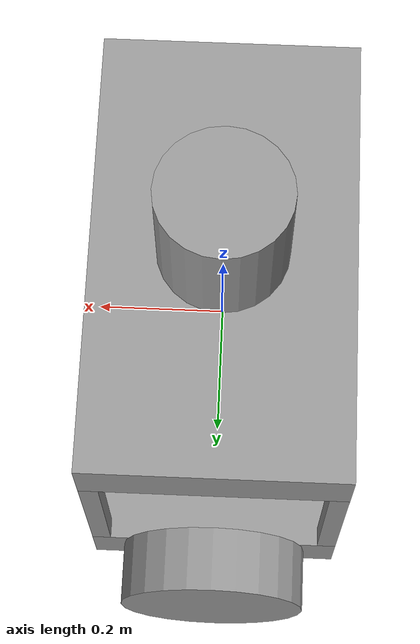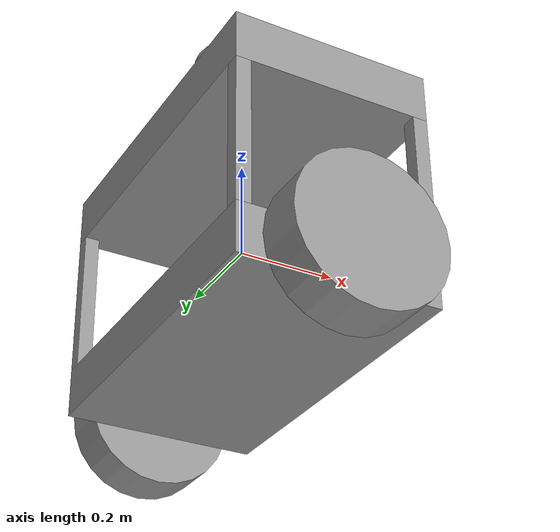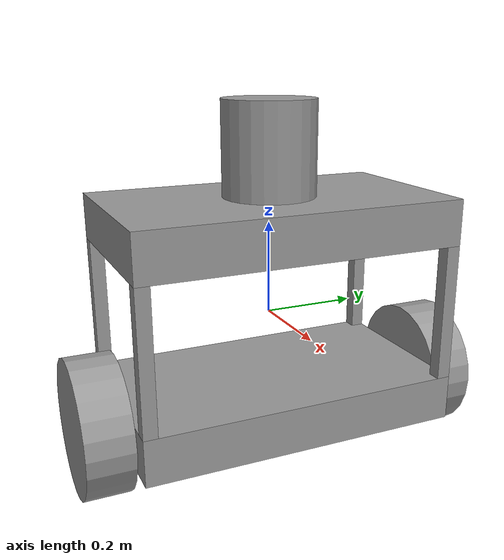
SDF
<?xml version='1.0'?>
<sdf version='1.6'>
  <model name='BurgerRobot'>
    <link name='link_0'>
      <pose frame=''>0 0 -0.194444 0 -0 0</pose>
      <inertial>
        <mass>1</mass>
        <inertia>
          <ixx>0.166667</ixx>
          <ixy>0</ixy>
          <ixz>0</ixz>
          <iyy>0.166667</iyy>
          <iyz>0</iyz>
          <izz>0.166667</izz>
        </inertia>
        <pose frame=''>0 0 0 0 -0 0</pose>
      </inertial>
      <gravity>1</gravity>
      <self_collide>0</self_collide>
      <kinematic>0</kinematic>
      <visual name='visual'>
        <pose frame=''>0 0 0 0 -0 0</pose>
        <geometry>
          <box>
            <size>0.4 0.7 0.1</size>
          </box>
        </geometry>
        <material>
          <lighting>1</lighting>
          <script>
            <uri>file://media/materials/scripts/gazebo.material</uri>
            <name>Gazebo/Grey</name>
          </script>
          <shader type='pixel'>
            <normal_map>__default__</normal_map>
          </shader>
          <ambient>0.3 0.3 0.3 1</ambient>
          <diffuse>0.7 0.7 0.7 1</diffuse>
          <specular>0.01 0.01 0.01 1</specular>
          <emissive>0 0 0 1</emissive>
        </material>
        <transparency>0</transparency>
        <cast_shadows>1</cast_shadows>
      </visual>
      <collision name='collision'>
        <laser_retro>0</laser_retro>
        <max_contacts>10</max_contacts>
        <pose frame=''>0 0 0 0 -0 0</pose>
        <geometry>
          <box>
            <size>0.4 0.7 0.1</size>
          </box>
        </geometry>
        <surface>
          <friction>
            <ode>
              <mu>1</mu>
              <mu2>1</mu2>
              <fdir1>0 0 0</fdir1>
              <slip1>0</slip1>
              <slip2>0</slip2>
            </ode>
            <torsional>
              <coefficient>1</coefficient>
              <patch_radius>0</patch_radius>
              <surface_radius>0</surface_radius>
              <use_patch_radius>1</use_patch_radius>
              <ode>
                <slip>0</slip>
              </ode>
            </torsional>
          </friction>
          <bounce>
            <restitution_coefficient>0</restitution_coefficient>
            <threshold>1e+06</threshold>
          </bounce>
          <contact>
            <collide_without_contact>0</collide_without_contact>
            <collide_without_contact_bitmask>1</collide_without_contact_bitmask>
            <collide_bitmask>1</collide_bitmask>
            <ode>
              <soft_cfm>0</soft_cfm>
              <soft_erp>0.2</soft_erp>
              <kp>1e+13</kp>
              <kd>1</kd>
              <max_vel>0.01</max_vel>
              <min_depth>0</min_depth>
            </ode>
            <bullet>
              <split_impulse>1</split_impulse>
              <split_impulse_penetration_threshold>-0.01</split_impulse_penetration_threshold>
              <soft_cfm>0</soft_cfm>
              <soft_erp>0.2</soft_erp>
              <kp>1e+13</kp>
              <kd>1</kd>
            </bullet>
          </contact>
        </surface>
      </collision>
    </link>
    <link name='link_0_clone'>
      <pose frame=''>0 0 0.205556 0 -0 0</pose>
      <inertial>
        <mass>1</mass>
        <inertia>
          <ixx>0.166667</ixx>
          <ixy>0</ixy>
          <ixz>0</ixz>
          <iyy>0.166667</iyy>
          <iyz>0</iyz>
          <izz>0.166667</izz>
        </inertia>
        <pose frame=''>0 0 0 0 -0 0</pose>
      </inertial>
      <self_collide>0</self_collide>
      <kinematic>0</kinematic>
      <gravity>1</gravity>
      <visual name='visual'>
        <pose frame=''>0 0 0 0 -0 0</pose>
        <geometry>
          <box>
            <size>0.4 0.7 0.1</size>
          </box>
        </geometry>
        <material>
          <lighting>1</lighting>
          <script>
            <uri>file://media/materials/scripts/gazebo.material</uri>
            <name>Gazebo/Grey</name>
          </script>
          <shader type='pixel'>
            <normal_map>__default__</normal_map>
          </shader>
          <ambient>0.3 0.3 0.3 1</ambient>
          <diffuse>0.7 0.7 0.7 1</diffuse>
          <specular>0.01 0.01 0.01 1</specular>
          <emissive>0 0 0 1</emissive>
        </material>
        <transparency>0</transparency>
        <cast_shadows>1</cast_shadows>
      </visual>
      <collision name='collision'>
        <laser_retro>0</laser_retro>
        <max_contacts>10</max_contacts>
        <pose frame=''>0 0 0 0 -0 0</pose>
        <geometry>
          <box>
            <size>0.4 0.7 0.1</size>
          </box>
        </geometry>
        <surface>
          <friction>
            <ode>
              <mu>1</mu>
              <mu2>1</mu2>
              <fdir1>0 0 0</fdir1>
              <slip1>0</slip1>
              <slip2>0</slip2>
            </ode>
            <torsional>
              <coefficient>1</coefficient>
              <patch_radius>0</patch_radius>
              <surface_radius>0</surface_radius>
              <use_patch_radius>1</use_patch_radius>
              <ode>
                <slip>0</slip>
              </ode>
            </torsional>
          </friction>
          <bounce>
            <restitution_coefficient>0</restitution_coefficient>
            <threshold>1e+06</threshold>
          </bounce>
          <contact>
            <collide_without_contact>0</collide_without_contact>
            <collide_without_contact_bitmask>1</collide_without_contact_bitmask>
            <collide_bitmask>1</collide_bitmask>
            <ode>
              <soft_cfm>0</soft_cfm>
              <soft_erp>0.2</soft_erp>
              <kp>1e+13</kp>
              <kd>1</kd>
              <max_vel>0.01</max_vel>
              <min_depth>0</min_depth>
            </ode>
            <bullet>
              <split_impulse>1</split_impulse>
              <split_impulse_penetration_threshold>-0.01</split_impulse_penetration_threshold>
              <soft_cfm>0</soft_cfm>
              <soft_erp>0.2</soft_erp>
              <kp>1e+13</kp>
              <kd>1</kd>
            </bullet>
          </contact>
        </surface>
      </collision>
    </link>
    <link name='link_2'>
      <pose frame=''>0 -0.400001 -0.194444 1.5708 -0 0</pose>
      <inertial>
        <mass>1</mass>
        <inertia>
          <ixx>0.145833</ixx>
          <ixy>0</ixy>
          <ixz>0</ixz>
          <iyy>0.145833</iyy>
          <iyz>0</iyz>
          <izz>0.125</izz>
        </inertia>
        <pose frame=''>0 0 0 0 -0 0</pose>
      </inertial>
      <gravity>1</gravity>
      <self_collide>0</self_collide>
      <kinematic>0</kinematic>
      <visual name='visual'>
        <pose frame=''>0 0 0 0 -0 0</pose>
        <geometry>
          <cylinder>
            <radius>0.15</radius>
            <length>0.1</length>
          </cylinder>
        </geometry>
        <material>
          <lighting>1</lighting>
          <script>
            <uri>file://media/materials/scripts/gazebo.material</uri>
            <name>Gazebo/Grey</name>
          </script>
          <shader type='pixel'>
            <normal_map>__default__</normal_map>
          </shader>
          <ambient>0.3 0.3 0.3 1</ambient>
          <diffuse>0.7 0.7 0.7 1</diffuse>
          <specular>0.01 0.01 0.01 1</specular>
          <emissive>0 0 0 1</emissive>
        </material>
        <transparency>0</transparency>
        <cast_shadows>1</cast_shadows>
      </visual>
      <collision name='collision'>
        <laser_retro>0</laser_retro>
        <max_contacts>10</max_contacts>
        <pose frame=''>0 0 0 0 -0 0</pose>
        <geometry>
          <cylinder>
            <radius>0.15</radius>
            <length>0.1</length>
          </cylinder>
        </geometry>
        <surface>
          <friction>
            <ode>
              <mu>1</mu>
              <mu2>1</mu2>
              <fdir1>0 0 0</fdir1>
              <slip1>0</slip1>
              <slip2>0</slip2>
            </ode>
            <torsional>
              <coefficient>1</coefficient>
              <patch_radius>0</patch_radius>
              <surface_radius>0</surface_radius>
              <use_patch_radius>1</use_patch_radius>
              <ode>
                <slip>0</slip>
              </ode>
            </torsional>
          </friction>
          <bounce>
            <restitution_coefficient>0</restitution_coefficient>
            <threshold>1e+06</threshold>
          </bounce>
          <contact>
            <collide_without_contact>0</collide_without_contact>
            <collide_without_contact_bitmask>1</collide_without_contact_bitmask>
            <collide_bitmask>1</collide_bitmask>
            <ode>
              <soft_cfm>0</soft_cfm>
              <soft_erp>0.2</soft_erp>
              <kp>1e+13</kp>
              <kd>1</kd>
              <max_vel>0.01</max_vel>
              <min_depth>0</min_depth>
            </ode>
            <bullet>
              <split_impulse>1</split_impulse>
              <split_impulse_penetration_threshold>-0.01</split_impulse_penetration_threshold>
              <soft_cfm>0</soft_cfm>
              <soft_erp>0.2</soft_erp>
              <kp>1e+13</kp>
              <kd>1</kd>
            </bullet>
          </contact>
        </surface>
      </collision>
    </link>
    <link name='link_2_clone'>
      <pose frame=''>0 0.400001 -0.194444 1.5708 -0 0</pose>
      <inertial>
        <mass>1</mass>
        <inertia>
          <ixx>0.145833</ixx>
          <ixy>0</ixy>
          <ixz>0</ixz>
          <iyy>0.145833</iyy>
          <iyz>0</iyz>
          <izz>0.125</izz>
        </inertia>
        <pose frame=''>0 0 0 0 -0 0</pose>
      </inertial>
      <self_collide>0</self_collide>
      <kinematic>0</kinematic>
      <gravity>1</gravity>
      <visual name='visual'>
        <pose frame=''>0 0 0 0 -0 0</pose>
        <geometry>
          <cylinder>
            <radius>0.15</radius>
            <length>0.1</length>
          </cylinder>
        </geometry>
        <material>
          <lighting>1</lighting>
          <script>
            <uri>file://media/materials/scripts/gazebo.material</uri>
            <name>Gazebo/Grey</name>
          </script>
          <shader type='pixel'>
            <normal_map>__default__</normal_map>
          </shader>
          <ambient>0.3 0.3 0.3 1</ambient>
          <diffuse>0.7 0.7 0.7 1</diffuse>
          <specular>0.01 0.01 0.01 1</specular>
          <emissive>0 0 0 1</emissive>
        </material>
        <transparency>0</transparency>
        <cast_shadows>1</cast_shadows>
      </visual>
      <collision name='collision'>
        <laser_retro>0</laser_retro>
        <max_contacts>10</max_contacts>
        <pose frame=''>0 0 0 0 -0 0</pose>
        <geometry>
          <cylinder>
            <radius>0.15</radius>
            <length>0.1</length>
          </cylinder>
        </geometry>
        <surface>
          <friction>
            <ode>
              <mu>1</mu>
              <mu2>1</mu2>
              <fdir1>0 0 0</fdir1>
              <slip1>0</slip1>
              <slip2>0</slip2>
            </ode>
            <torsional>
              <coefficient>1</coefficient>
              <patch_radius>0</patch_radius>
              <surface_radius>0</surface_radius>
              <use_patch_radius>1</use_patch_radius>
              <ode>
                <slip>0</slip>
              </ode>
            </torsional>
          </friction>
          <bounce>
            <restitution_coefficient>0</restitution_coefficient>
            <threshold>1e+06</threshold>
          </bounce>
          <contact>
            <collide_without_contact>0</collide_without_contact>
            <collide_without_contact_bitmask>1</collide_without_contact_bitmask>
            <collide_bitmask>1</collide_bitmask>
            <ode>
              <soft_cfm>0</soft_cfm>
              <soft_erp>0.2</soft_erp>
              <kp>1e+13</kp>
              <kd>1</kd>
              <max_vel>0.01</max_vel>
              <min_depth>0</min_depth>
            </ode>
            <bullet>
              <split_impulse>1</split_impulse>
              <split_impulse_penetration_threshold>-0.01</split_impulse_penetration_threshold>
              <soft_cfm>0</soft_cfm>
              <soft_erp>0.2</soft_erp>
              <kp>1e+13</kp>
              <kd>1</kd>
            </bullet>
          </contact>
        </surface>
      </collision>
    </link>
    <link name='link_3'>
      <pose frame=''>-0.185 -0.335 0.005556 0 -0 0</pose>
      <inertial>
        <mass>1</mass>
        <inertia>
          <ixx>0.166667</ixx>
          <ixy>0</ixy>
          <ixz>0</ixz>
          <iyy>0.166667</iyy>
          <iyz>0</iyz>
          <izz>0.166667</izz>
        </inertia>
        <pose frame=''>0 0 0 0 -0 0</pose>
      </inertial>
      <gravity>1</gravity>
      <self_collide>0</self_collide>
      <kinematic>0</kinematic>
      <visual name='visual'>
        <pose frame=''>0 0 0 0 -0 0</pose>
        <geometry>
          <box>
            <size>0.03 0.03 0.3</size>
          </box>
        </geometry>
        <material>
          <lighting>1</lighting>
          <script>
            <uri>file://media/materials/scripts/gazebo.material</uri>
            <name>Gazebo/Grey</name>
          </script>
          <shader type='pixel'>
            <normal_map>__default__</normal_map>
          </shader>
          <ambient>0.3 0.3 0.3 1</ambient>
          <diffuse>0.7 0.7 0.7 1</diffuse>
          <specular>0.01 0.01 0.01 1</specular>
          <emissive>0 0 0 1</emissive>
        </material>
        <transparency>0</transparency>
        <cast_shadows>1</cast_shadows>
      </visual>
      <collision name='collision'>
        <laser_retro>0</laser_retro>
        <max_contacts>10</max_contacts>
        <pose frame=''>0 0 0 0 -0 0</pose>
        <geometry>
          <box>
            <size>0.03 0.03 0.3</size>
          </box>
        </geometry>
        <surface>
          <friction>
            <ode>
              <mu>1</mu>
              <mu2>1</mu2>
              <fdir1>0 0 0</fdir1>
              <slip1>0</slip1>
              <slip2>0</slip2>
            </ode>
            <torsional>
              <coefficient>1</coefficient>
              <patch_radius>0</patch_radius>
              <surface_radius>0</surface_radius>
              <use_patch_radius>1</use_patch_radius>
              <ode>
                <slip>0</slip>
              </ode>
            </torsional>
          </friction>
          <bounce>
            <restitution_coefficient>0</restitution_coefficient>
            <threshold>1e+06</threshold>
          </bounce>
          <contact>
            <collide_without_contact>0</collide_without_contact>
            <collide_without_contact_bitmask>1</collide_without_contact_bitmask>
            <collide_bitmask>1</collide_bitmask>
            <ode>
              <soft_cfm>0</soft_cfm>
              <soft_erp>0.2</soft_erp>
              <kp>1e+13</kp>
              <kd>1</kd>
              <max_vel>0.01</max_vel>
              <min_depth>0</min_depth>
            </ode>
            <bullet>
              <split_impulse>1</split_impulse>
              <split_impulse_penetration_threshold>-0.01</split_impulse_penetration_threshold>
              <soft_cfm>0</soft_cfm>
              <soft_erp>0.2</soft_erp>
              <kp>1e+13</kp>
              <kd>1</kd>
            </bullet>
          </contact>
        </surface>
      </collision>
    </link>
    <link name='link_3_clone'>
      <pose frame=''>-0.185 0.335 0.005556 0 -0 0</pose>
      <inertial>
        <mass>1</mass>
        <inertia>
          <ixx>0.166667</ixx>
          <ixy>0</ixy>
          <ixz>0</ixz>
          <iyy>0.166667</iyy>
          <iyz>0</iyz>
          <izz>0.166667</izz>
        </inertia>
        <pose frame=''>-0 0 0 0 -0 0</pose>
      </inertial>
      <self_collide>0</self_collide>
      <kinematic>0</kinematic>
      <gravity>1</gravity>
      <visual name='visual'>
        <pose frame=''>0 0 0 0 -0 0</pose>
        <geometry>
          <box>
            <size>0.03 0.03 0.3</size>
          </box>
        </geometry>
        <material>
          <lighting>1</lighting>
          <script>
            <uri>file://media/materials/scripts/gazebo.material</uri>
            <name>Gazebo/Grey</name>
          </script>
          <shader type='pixel'>
            <normal_map>__default__</normal_map>
          </shader>
          <ambient>0.3 0.3 0.3 1</ambient>
          <diffuse>0.7 0.7 0.7 1</diffuse>
          <specular>0.01 0.01 0.01 1</specular>
          <emissive>0 0 0 1</emissive>
        </material>
        <transparency>0</transparency>
        <cast_shadows>1</cast_shadows>
      </visual>
      <collision name='collision'>
        <laser_retro>0</laser_retro>
        <max_contacts>10</max_contacts>
        <pose frame=''>0 0 0 0 -0 0</pose>
        <geometry>
          <box>
            <size>0.03 0.03 0.3</size>
          </box>
        </geometry>
        <surface>
          <friction>
            <ode>
              <mu>1</mu>
              <mu2>1</mu2>
              <fdir1>0 0 0</fdir1>
              <slip1>0</slip1>
              <slip2>0</slip2>
            </ode>
            <torsional>
              <coefficient>1</coefficient>
              <patch_radius>0</patch_radius>
              <surface_radius>0</surface_radius>
              <use_patch_radius>1</use_patch_radius>
              <ode>
                <slip>0</slip>
              </ode>
            </torsional>
          </friction>
          <bounce>
            <restitution_coefficient>0</restitution_coefficient>
            <threshold>1e+06</threshold>
          </bounce>
          <contact>
            <collide_without_contact>0</collide_without_contact>
            <collide_without_contact_bitmask>1</collide_without_contact_bitmask>
            <collide_bitmask>1</collide_bitmask>
            <ode>
              <soft_cfm>0</soft_cfm>
              <soft_erp>0.2</soft_erp>
              <kp>1e+13</kp>
              <kd>1</kd>
              <max_vel>0.01</max_vel>
              <min_depth>0</min_depth>
            </ode>
            <bullet>
              <split_impulse>1</split_impulse>
              <split_impulse_penetration_threshold>-0.01</split_impulse_penetration_threshold>
              <soft_cfm>0</soft_cfm>
              <soft_erp>0.2</soft_erp>
              <kp>1e+13</kp>
              <kd>1</kd>
            </bullet>
          </contact>
        </surface>
      </collision>
    </link>
    <link name='link_3_clone_0'>
      <pose frame=''>0.185 0.335 0.005556 0 -0 0</pose>
      <inertial>
        <mass>1</mass>
        <inertia>
          <ixx>0.166667</ixx>
          <ixy>0</ixy>
          <ixz>0</ixz>
          <iyy>0.166667</iyy>
          <iyz>0</iyz>
          <izz>0.166667</izz>
        </inertia>
        <pose frame=''>0 0 0 0 -0 0</pose>
      </inertial>
      <self_collide>0</self_collide>
      <kinematic>0</kinematic>
      <gravity>1</gravity>
      <visual name='visual'>
        <pose frame=''>0 0 0 0 -0 0</pose>
        <geometry>
          <box>
            <size>0.03 0.03 0.3</size>
          </box>
        </geometry>
        <material>
          <lighting>1</lighting>
          <script>
            <uri>file://media/materials/scripts/gazebo.material</uri>
            <name>Gazebo/Grey</name>
          </script>
          <shader type='pixel'>
            <normal_map>__default__</normal_map>
          </shader>
          <ambient>0.3 0.3 0.3 1</ambient>
          <diffuse>0.7 0.7 0.7 1</diffuse>
          <specular>0.01 0.01 0.01 1</specular>
          <emissive>0 0 0 1</emissive>
        </material>
        <transparency>0</transparency>
        <cast_shadows>1</cast_shadows>
      </visual>
      <collision name='collision'>
        <laser_retro>0</laser_retro>
        <max_contacts>10</max_contacts>
        <pose frame=''>0 0 0 0 -0 0</pose>
        <geometry>
          <box>
            <size>0.03 0.03 0.3</size>
          </box>
        </geometry>
        <surface>
          <friction>
            <ode>
              <mu>1</mu>
              <mu2>1</mu2>
              <fdir1>0 0 0</fdir1>
              <slip1>0</slip1>
              <slip2>0</slip2>
            </ode>
            <torsional>
              <coefficient>1</coefficient>
              <patch_radius>0</patch_radius>
              <surface_radius>0</surface_radius>
              <use_patch_radius>1</use_patch_radius>
              <ode>
                <slip>0</slip>
              </ode>
            </torsional>
          </friction>
          <bounce>
            <restitution_coefficient>0</restitution_coefficient>
            <threshold>1e+06</threshold>
          </bounce>
          <contact>
            <collide_without_contact>0</collide_without_contact>
            <collide_without_contact_bitmask>1</collide_without_contact_bitmask>
            <collide_bitmask>1</collide_bitmask>
            <ode>
              <soft_cfm>0</soft_cfm>
              <soft_erp>0.2</soft_erp>
              <kp>1e+13</kp>
              <kd>1</kd>
              <max_vel>0.01</max_vel>
              <min_depth>0</min_depth>
            </ode>
            <bullet>
              <split_impulse>1</split_impulse>
              <split_impulse_penetration_threshold>-0.01</split_impulse_penetration_threshold>
              <soft_cfm>0</soft_cfm>
              <soft_erp>0.2</soft_erp>
              <kp>1e+13</kp>
              <kd>1</kd>
            </bullet>
          </contact>
        </surface>
      </collision>
    </link>
    <link name='link_3_clone_1'>
      <pose frame=''>0.185 -0.335 0.005556 0 -0 0</pose>
      <inertial>
        <mass>1</mass>
        <inertia>
          <ixx>0.166667</ixx>
          <ixy>0</ixy>
          <ixz>0</ixz>
          <iyy>0.166667</iyy>
          <iyz>0</iyz>
          <izz>0.166667</izz>
        </inertia>
        <pose frame=''>0 0 0 0 -0 0</pose>
      </inertial>
      <self_collide>0</self_collide>
      <kinematic>0</kinematic>
      <gravity>1</gravity>
      <visual name='visual'>
        <pose frame=''>0 0 0 0 -0 0</pose>
        <geometry>
          <box>
            <size>0.03 0.03 0.3</size>
          </box>
        </geometry>
        <material>
          <lighting>1</lighting>
          <script>
            <uri>file://media/materials/scripts/gazebo.material</uri>
            <name>Gazebo/Grey</name>
          </script>
          <shader type='pixel'>
            <normal_map>__default__</normal_map>
          </shader>
          <ambient>0.3 0.3 0.3 1</ambient>
          <diffuse>0.7 0.7 0.7 1</diffuse>
          <specular>0.01 0.01 0.01 1</specular>
          <emissive>0 0 0 1</emissive>
        </material>
        <transparency>0</transparency>
        <cast_shadows>1</cast_shadows>
      </visual>
      <collision name='collision'>
        <laser_retro>0</laser_retro>
        <max_contacts>10</max_contacts>
        <pose frame=''>0 0 0 0 -0 0</pose>
        <geometry>
          <box>
            <size>0.03 0.03 0.3</size>
          </box>
        </geometry>
        <surface>
          <friction>
            <ode>
              <mu>1</mu>
              <mu2>1</mu2>
              <fdir1>0 0 0</fdir1>
              <slip1>0</slip1>
              <slip2>0</slip2>
            </ode>
            <torsional>
              <coefficient>1</coefficient>
              <patch_radius>0</patch_radius>
              <surface_radius>0</surface_radius>
              <use_patch_radius>1</use_patch_radius>
              <ode>
                <slip>0</slip>
              </ode>
            </torsional>
          </friction>
          <bounce>
            <restitution_coefficient>0</restitution_coefficient>
            <threshold>1e+06</threshold>
          </bounce>
          <contact>
            <collide_without_contact>0</collide_without_contact>
            <collide_without_contact_bitmask>1</collide_without_contact_bitmask>
            <collide_bitmask>1</collide_bitmask>
            <ode>
              <soft_cfm>0</soft_cfm>
              <soft_erp>0.2</soft_erp>
              <kp>1e+13</kp>
              <kd>1</kd>
              <max_vel>0.01</max_vel>
              <min_depth>0</min_depth>
            </ode>
            <bullet>
              <split_impulse>1</split_impulse>
              <split_impulse_penetration_threshold>-0.01</split_impulse_penetration_threshold>
              <soft_cfm>0</soft_cfm>
              <soft_erp>0.2</soft_erp>
              <kp>1e+13</kp>
              <kd>1</kd>
            </bullet>
          </contact>
        </surface>
      </collision>
    </link>
    <link name='link_4'>
      <pose frame=''>0 0 0.355556 0 -0 0</pose>
      <inertial>
        <mass>1</mass>
        <inertia>
          <ixx>0.145833</ixx>
          <ixy>0</ixy>
          <ixz>0</ixz>
          <iyy>0.145833</iyy>
          <iyz>0</iyz>
          <izz>0.125</izz>
        </inertia>
        <pose frame=''>0 0 0 0 -0 0</pose>
      </inertial>
      <gravity>1</gravity>
      <self_collide>0</self_collide>
      <kinematic>0</kinematic>
      <visual name='visual'>
        <pose frame=''>0 0 0 0 -0 0</pose>
        <geometry>
          <cylinder>
            <radius>0.1</radius>
            <length>0.2</length>
          </cylinder>
        </geometry>
        <material>
          <lighting>1</lighting>
          <script>
            <uri>file://media/materials/scripts/gazebo.material</uri>
            <name>Gazebo/Grey</name>
          </script>
          <shader type='pixel'>
            <normal_map>__default__</normal_map>
          </shader>
          <ambient>0.3 0.3 0.3 1</ambient>
          <diffuse>0.7 0.7 0.7 1</diffuse>
          <specular>0.01 0.01 0.01 1</specular>
          <emissive>0 0 0 1</emissive>
        </material>
        <transparency>0</transparency>
        <cast_shadows>1</cast_shadows>
      </visual>
      <collision name='collision'>
        <laser_retro>0</laser_retro>
        <max_contacts>10</max_contacts>
        <pose frame=''>0 0 0 0 -0 0</pose>
        <geometry>
          <cylinder>
            <radius>0.1</radius>
            <length>0.2</length>
          </cylinder>
        </geometry>
        <surface>
          <friction>
            <ode>
              <mu>1</mu>
              <mu2>1</mu2>
              <fdir1>0 0 0</fdir1>
              <slip1>0</slip1>
              <slip2>0</slip2>
            </ode>
            <torsional>
              <coefficient>1</coefficient>
              <patch_radius>0</patch_radius>
              <surface_radius>0</surface_radius>
              <use_patch_radius>1</use_patch_radius>
              <ode>
                <slip>0</slip>
              </ode>
            </torsional>
          </friction>
          <bounce>
            <restitution_coefficient>0</restitution_coefficient>
            <threshold>1e+06</threshold>
          </bounce>
          <contact>
            <collide_without_contact>0</collide_without_contact>
            <collide_without_contact_bitmask>1</collide_without_contact_bitmask>
            <collide_bitmask>1</collide_bitmask>
            <ode>
              <soft_cfm>0</soft_cfm>
              <soft_erp>0.2</soft_erp>
              <kp>1e+13</kp>
              <kd>1</kd>
              <max_vel>0.01</max_vel>
              <min_depth>0</min_depth>
            </ode>
            <bullet>
              <split_impulse>1</split_impulse>
              <split_impulse_penetration_threshold>-0.01</split_impulse_penetration_threshold>
              <soft_cfm>0</soft_cfm>
              <soft_erp>0.2</soft_erp>
              <kp>1e+13</kp>
              <kd>1</kd>
            </bullet>
          </contact>
        </surface>
      </collision>
    </link>
    <joint name='link_0_JOINT_2' type='revolute'>
      <parent>link_0</parent>
      <child>link_2</child>
      <pose frame=''>0 0 0 0 0 -0.02</pose>
      <axis>
        <xyz>0 0 1</xyz>
        <use_parent_model_frame>0</use_parent_model_frame>
        <limit>
          <lower>-1.79769e+308</lower>
          <upper>1.79769e+308</upper>
          <effort>-1</effort>
          <velocity>-1</velocity>
        </limit>
        <dynamics>
          <spring_reference>0</spring_reference>
          <spring_stiffness>0</spring_stiffness>
          <damping>0</damping>
        </dynamics>
      </axis>
      <physics>
        <ode>
          <limit>
            <cfm>0</cfm>
            <erp>0.2</erp>
          </limit>
          <suspension>
            <cfm>0</cfm>
            <erp>0.2</erp>
          </suspension>
        </ode>
      </physics>
    </joint>
    <joint name='link_0_JOINT_3' type='revolute'>
      <parent>link_0</parent>
      <child>link_2_clone</child>
      <pose frame=''>0 0 0 0 -0 0</pose>
      <axis>
        <xyz>0 0 1</xyz>
        <use_parent_model_frame>0</use_parent_model_frame>
        <limit>
          <lower>-1.79769e+308</lower>
          <upper>1.79769e+308</upper>
          <effort>-1</effort>
          <velocity>-1</velocity>
        </limit>
        <dynamics>
          <spring_reference>0</spring_reference>
          <spring_stiffness>0</spring_stiffness>
          <damping>0</damping>
        </dynamics>
      </axis>
      <physics>
        <ode>
          <limit>
            <cfm>0</cfm>
            <erp>0.2</erp>
          </limit>
          <suspension>
            <cfm>0</cfm>
            <erp>0.2</erp>
          </suspension>
        </ode>
      </physics>
    </joint>
    <static>0</static>
    <allow_auto_disable>1</allow_auto_disable>
  </model>
</sdf>
